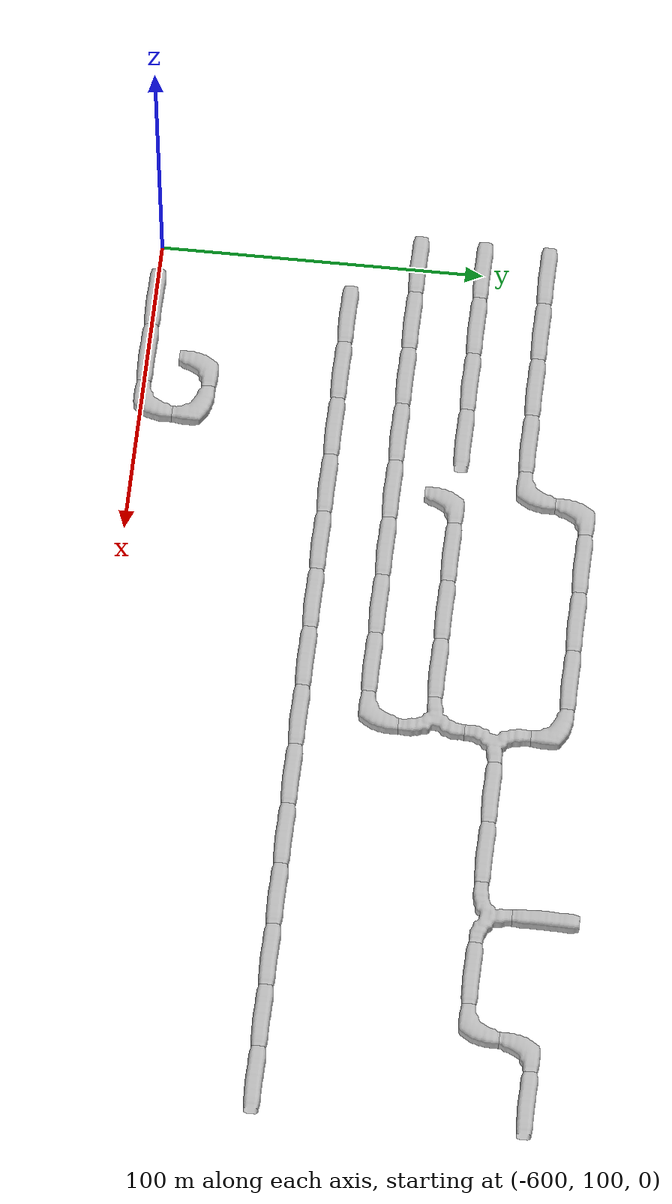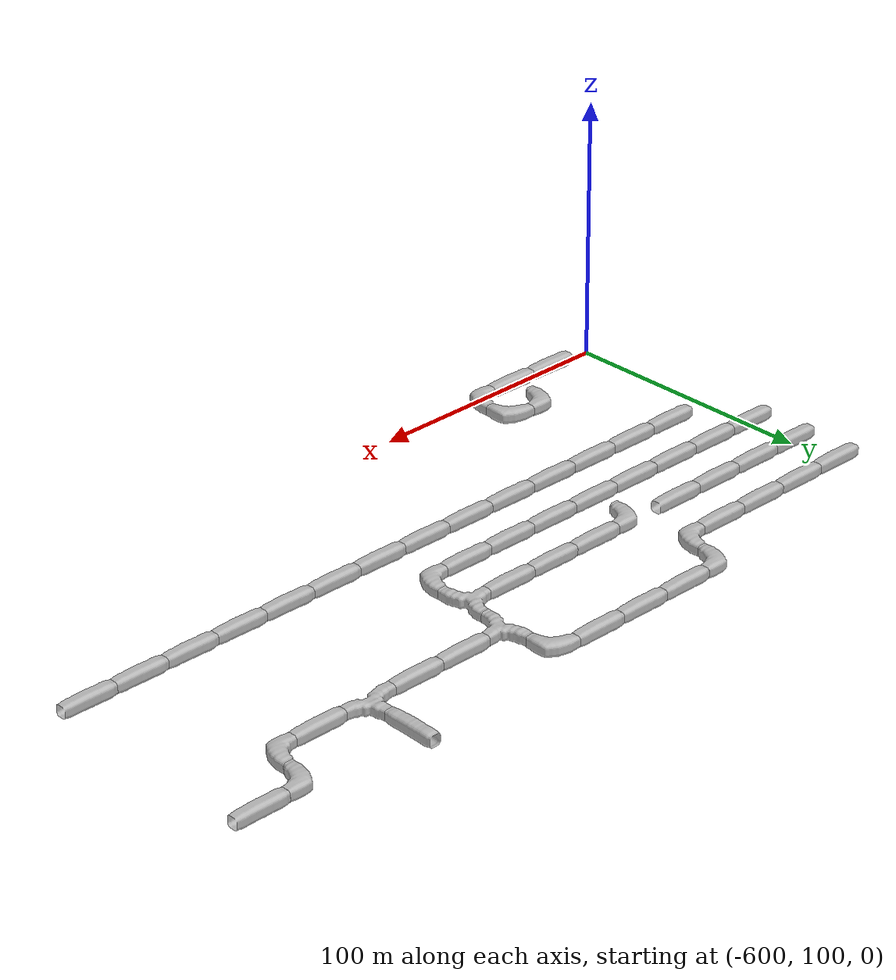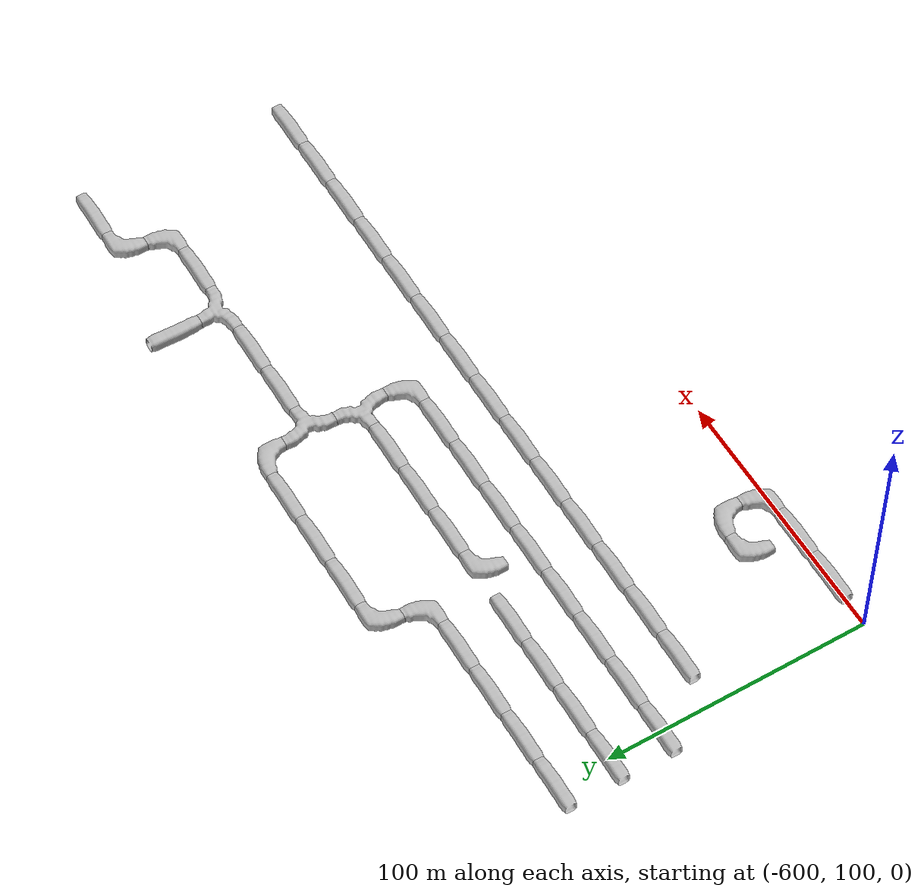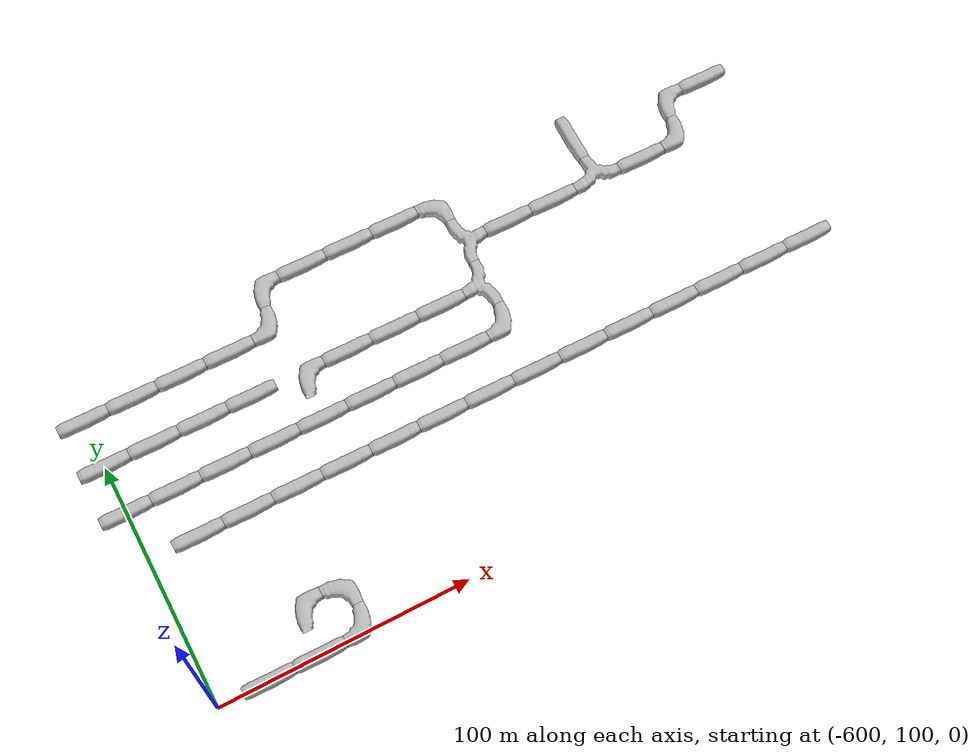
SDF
<sdf version="1.6">
 <world name="cave_32000_64">
  <include>
   <static>true</static>
   <name>cave_-29_5</name>
   <pose>-580 100 0 0 0 1.5707963267948966</pose>
   <uri>model://cave_straight_20m</uri>
  </include>
  <include>
   <static>true</static>
   <name>cave_-28_5</name>
   <pose>-560 100 0 0 0 1.5707963267948966</pose>
   <uri>model://cave_straight_20m</uri>
  </include>
  <include>
   <static>true</static>
   <name>cave_-27_5</name>
   <pose>-540 100 0 0 0 1.5707963267948966</pose>
   <uri>model://cave_L_20m</uri>
  </include>
  <include>
   <static>true</static>
   <name>cave_-27_6</name>
   <pose>-540 120 0 0 0 3.141592653589793</pose>
   <uri>model://cave_L_20m</uri>
  </include>
  <include>
   <static>true</static>
   <name>cave_-28_6</name>
   <pose>-560 120 0 0 0 -1.5707963267948966</pose>
   <uri>model://cave_L_20m</uri>
  </include>
  <include>
   <static>true</static>
   <name>cave_-16_12</name>
   <pose>-320 240 0 0 0 1.5707963267948966</pose>
   <uri>model://cave_straight_20m</uri>
  </include>
  <include>
   <static>true</static>
   <name>cave_-17_12</name>
   <pose>-340 240 0 0 0 -1.5707963267948966</pose>
   <uri>model://cave_L_20m</uri>
  </include>
  <include>
   <static>true</static>
   <name>cave_-17_11</name>
   <pose>-340 220 0 0 0 1.5707963267948966</pose>
   <uri>model://cave_L_20m</uri>
  </include>
  <include>
   <static>true</static>
   <name>cave_-18_11</name>
   <pose>-360 220 0 0 0 1.5707963267948966</pose>
   <uri>model://cave_straight_20m</uri>
  </include>
  <include>
   <static>true</static>
   <name>cave_-19_11</name>
   <pose>-380 220 0 0 0 0.0</pose>
   <uri>model://cave_3way_20m</uri>
  </include>
  <include>
   <static>true</static>
   <name>cave_-20_11</name>
   <pose>-400 220 0 0 0 1.5707963267948966</pose>
   <uri>model://cave_straight_20m</uri>
  </include>
  <include>
   <static>true</static>
   <name>cave_-21_11</name>
   <pose>-420 220 0 0 0 1.5707963267948966</pose>
   <uri>model://cave_straight_20m</uri>
  </include>
  <include>
   <static>true</static>
   <name>cave_-22_11</name>
   <pose>-440 220 0 0 0 -1.5707963267948966</pose>
   <uri>model://cave_3way_20m</uri>
  </include>
  <include>
   <static>true</static>
   <name>cave_-22_10</name>
   <pose>-440 200 0 0 0 1.5707963267948966</pose>
   <uri>model://cave_3way_20m</uri>
  </include>
  <include>
   <static>true</static>
   <name>cave_-22_9</name>
   <pose>-440 180 0 0 0 1.5707963267948966</pose>
   <uri>model://cave_L_20m</uri>
  </include>
  <include>
   <static>true</static>
   <name>cave_-23_9</name>
   <pose>-460 180 0 0 0 1.5707963267948966</pose>
   <uri>model://cave_straight_20m</uri>
  </include>
  <include>
   <static>true</static>
   <name>cave_-24_9</name>
   <pose>-480 180 0 0 0 1.5707963267948966</pose>
   <uri>model://cave_straight_20m</uri>
  </include>
  <include>
   <static>true</static>
   <name>cave_-25_9</name>
   <pose>-500 180 0 0 0 1.5707963267948966</pose>
   <uri>model://cave_straight_20m</uri>
  </include>
  <include>
   <static>true</static>
   <name>cave_-26_9</name>
   <pose>-520 180 0 0 0 1.5707963267948966</pose>
   <uri>model://cave_straight_20m</uri>
  </include>
  <include>
   <static>true</static>
   <name>cave_-27_9</name>
   <pose>-540 180 0 0 0 1.5707963267948966</pose>
   <uri>model://cave_straight_20m</uri>
  </include>
  <include>
   <static>true</static>
   <name>cave_-28_9</name>
   <pose>-560 180 0 0 0 1.5707963267948966</pose>
   <uri>model://cave_straight_20m</uri>
  </include>
  <include>
   <static>true</static>
   <name>cave_-29_9</name>
   <pose>-580 180 0 0 0 1.5707963267948966</pose>
   <uri>model://cave_straight_20m</uri>
  </include>
  <include>
   <static>true</static>
   <name>cave_-30_9</name>
   <pose>-600 180 0 0 0 1.5707963267948966</pose>
   <uri>model://cave_straight_20m</uri>
  </include>
  <include>
   <static>true</static>
   <name>cave_-29_8</name>
   <pose>-580 160 0 0 0 1.5707963267948966</pose>
   <uri>model://cave_straight_20m</uri>
  </include>
  <include>
   <static>true</static>
   <name>cave_-28_8</name>
   <pose>-560 160 0 0 0 1.5707963267948966</pose>
   <uri>model://cave_straight_20m</uri>
  </include>
  <include>
   <static>true</static>
   <name>cave_-27_8</name>
   <pose>-540 160 0 0 0 1.5707963267948966</pose>
   <uri>model://cave_straight_20m</uri>
  </include>
  <include>
   <static>true</static>
   <name>cave_-26_8</name>
   <pose>-520 160 0 0 0 1.5707963267948966</pose>
   <uri>model://cave_straight_20m</uri>
  </include>
  <include>
   <static>true</static>
   <name>cave_-25_8</name>
   <pose>-500 160 0 0 0 1.5707963267948966</pose>
   <uri>model://cave_straight_20m</uri>
  </include>
  <include>
   <static>true</static>
   <name>cave_-24_8</name>
   <pose>-480 160 0 0 0 1.5707963267948966</pose>
   <uri>model://cave_straight_20m</uri>
  </include>
  <include>
   <static>true</static>
   <name>cave_-23_8</name>
   <pose>-460 160 0 0 0 1.5707963267948966</pose>
   <uri>model://cave_straight_20m</uri>
  </include>
  <include>
   <static>true</static>
   <name>cave_-22_8</name>
   <pose>-440 160 0 0 0 1.5707963267948966</pose>
   <uri>model://cave_straight_20m</uri>
  </include>
  <include>
   <static>true</static>
   <name>cave_-21_8</name>
   <pose>-420 160 0 0 0 1.5707963267948966</pose>
   <uri>model://cave_straight_20m</uri>
  </include>
  <include>
   <static>true</static>
   <name>cave_-20_8</name>
   <pose>-400 160 0 0 0 1.5707963267948966</pose>
   <uri>model://cave_straight_20m</uri>
  </include>
  <include>
   <static>true</static>
   <name>cave_-19_8</name>
   <pose>-380 160 0 0 0 1.5707963267948966</pose>
   <uri>model://cave_straight_20m</uri>
  </include>
  <include>
   <static>true</static>
   <name>cave_-18_8</name>
   <pose>-360 160 0 0 0 1.5707963267948966</pose>
   <uri>model://cave_straight_20m</uri>
  </include>
  <include>
   <static>true</static>
   <name>cave_-17_8</name>
   <pose>-340 160 0 0 0 1.5707963267948966</pose>
   <uri>model://cave_straight_20m</uri>
  </include>
  <include>
   <static>true</static>
   <name>cave_-16_8</name>
   <pose>-320 160 0 0 0 1.5707963267948966</pose>
   <uri>model://cave_straight_20m</uri>
  </include>
  <include>
   <static>true</static>
   <name>cave_-23_10</name>
   <pose>-460 200 0 0 0 1.5707963267948966</pose>
   <uri>model://cave_straight_20m</uri>
  </include>
  <include>
   <static>true</static>
   <name>cave_-24_10</name>
   <pose>-480 200 0 0 0 1.5707963267948966</pose>
   <uri>model://cave_straight_20m</uri>
  </include>
  <include>
   <static>true</static>
   <name>cave_-25_10</name>
   <pose>-500 200 0 0 0 1.5707963267948966</pose>
   <uri>model://cave_straight_20m</uri>
  </include>
  <include>
   <static>true</static>
   <name>cave_-26_10</name>
   <pose>-520 200 0 0 0 -1.5707963267948966</pose>
   <uri>model://cave_L_20m</uri>
  </include>
  <include>
   <static>true</static>
   <name>cave_-22_12</name>
   <pose>-440 240 0 0 0 3.141592653589793</pose>
   <uri>model://cave_L_20m</uri>
  </include>
  <include>
   <static>true</static>
   <name>cave_-23_12</name>
   <pose>-460 240 0 0 0 1.5707963267948966</pose>
   <uri>model://cave_straight_20m</uri>
  </include>
  <include>
   <static>true</static>
   <name>cave_-24_12</name>
   <pose>-480 240 0 0 0 1.5707963267948966</pose>
   <uri>model://cave_straight_20m</uri>
  </include>
  <include>
   <static>true</static>
   <name>cave_-25_12</name>
   <pose>-500 240 0 0 0 1.5707963267948966</pose>
   <uri>model://cave_straight_20m</uri>
  </include>
  <include>
   <static>true</static>
   <name>cave_-26_12</name>
   <pose>-520 240 0 0 0 -1.5707963267948966</pose>
   <uri>model://cave_L_20m</uri>
  </include>
  <include>
   <static>true</static>
   <name>cave_-26_11</name>
   <pose>-520 220 0 0 0 1.5707963267948966</pose>
   <uri>model://cave_L_20m</uri>
  </include>
  <include>
   <static>true</static>
   <name>cave_-27_11</name>
   <pose>-540 220 0 0 0 1.5707963267948966</pose>
   <uri>model://cave_straight_20m</uri>
  </include>
  <include>
   <static>true</static>
   <name>cave_-28_11</name>
   <pose>-560 220 0 0 0 1.5707963267948966</pose>
   <uri>model://cave_straight_20m</uri>
  </include>
  <include>
   <static>true</static>
   <name>cave_-29_11</name>
   <pose>-580 220 0 0 0 1.5707963267948966</pose>
   <uri>model://cave_straight_20m</uri>
  </include>
  <include>
   <static>true</static>
   <name>cave_-30_11</name>
   <pose>-600 220 0 0 0 1.5707963267948966</pose>
   <uri>model://cave_straight_20m</uri>
  </include>
  <include>
   <static>true</static>
   <name>cave_-30_10</name>
   <pose>-600 200 0 0 0 1.5707963267948966</pose>
   <uri>model://cave_straight_20m</uri>
  </include>
  <include>
   <static>true</static>
   <name>cave_-29_10</name>
   <pose>-580 200 0 0 0 1.5707963267948966</pose>
   <uri>model://cave_straight_20m</uri>
  </include>
  <include>
   <static>true</static>
   <name>cave_-28_10</name>
   <pose>-560 200 0 0 0 1.5707963267948966</pose>
   <uri>model://cave_straight_20m</uri>
  </include>
  <include>
   <static>true</static>
   <name>cave_-27_10</name>
   <pose>-540 200 0 0 0 1.5707963267948966</pose>
   <uri>model://cave_straight_20m</uri>
  </include>
  <include>
   <static>true</static>
   <name>cave_-19_12</name>
   <pose>-380 240 0 0 0 0.0</pose>
   <uri>model://cave_straight_20m</uri>
  </include>
 </world>
</sdf>
